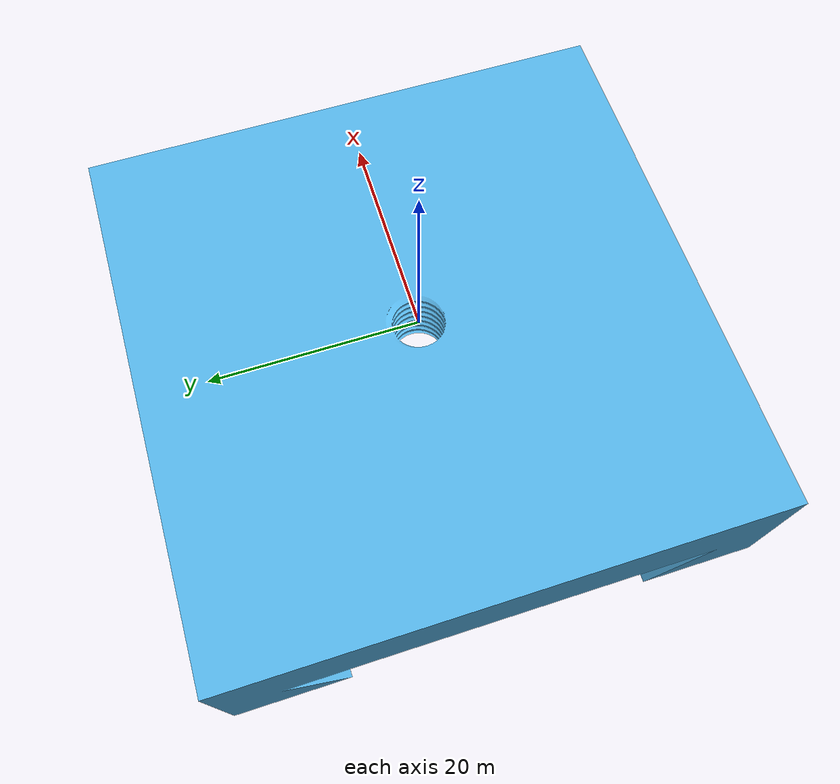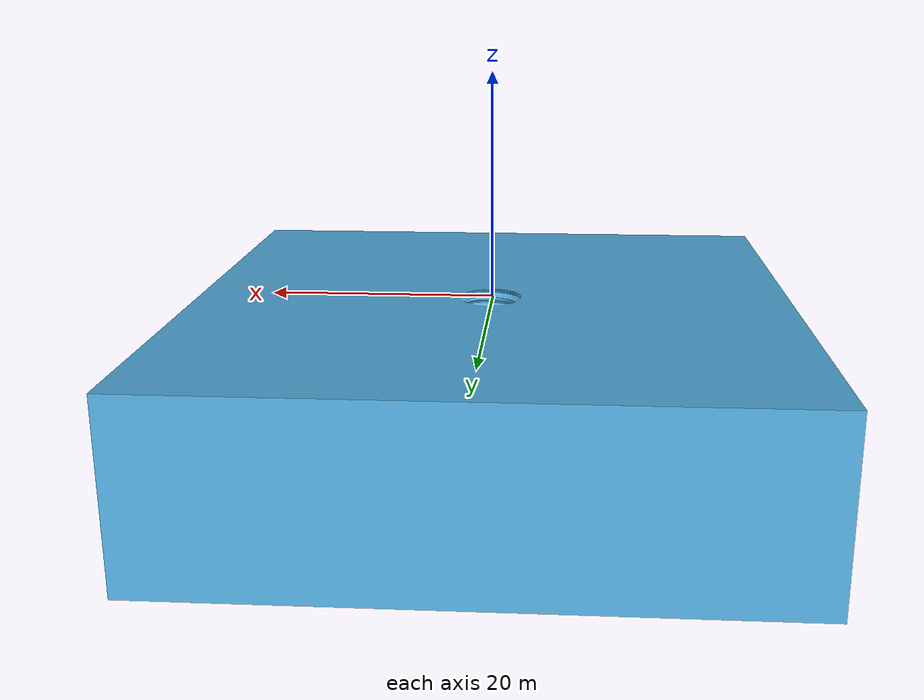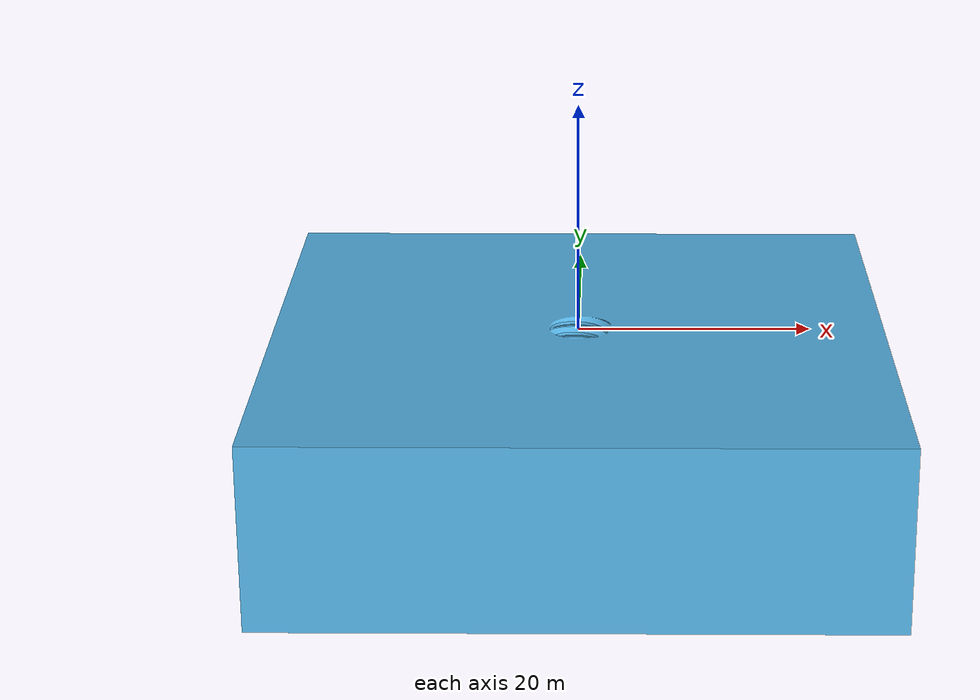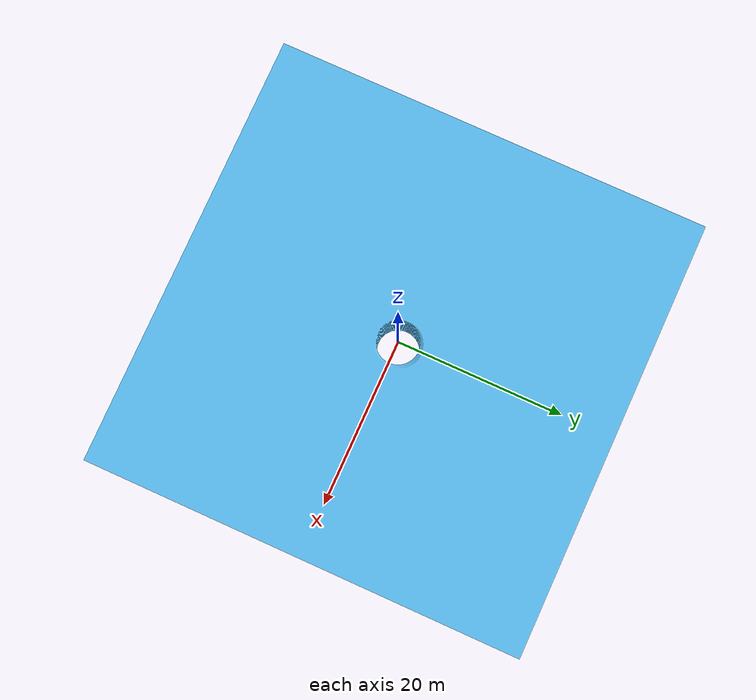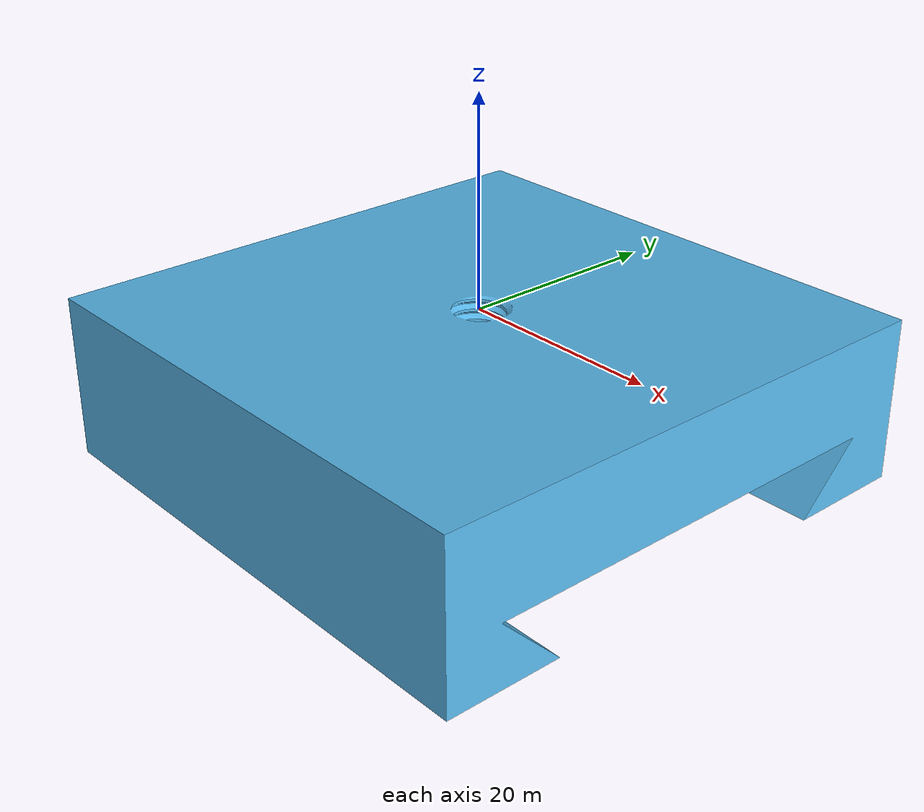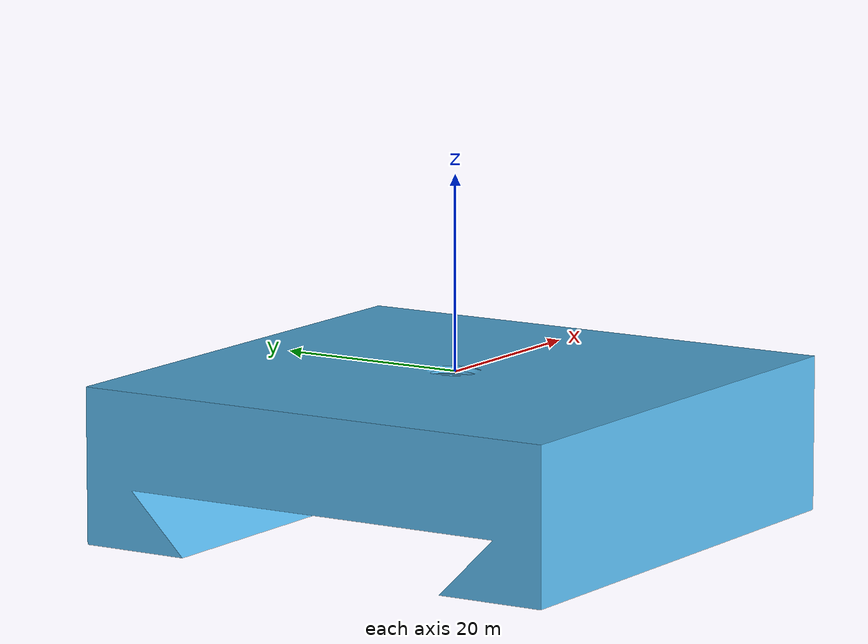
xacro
<?xml version="1.0" ?>
<!-- Only displays the end-effector -->

<robot name="end_effector_screwblock" xmlns:xacro="http://ros.org/wiki/xacro">

  <link name="screwblock_link"/>

	<xacro:property name="prefix" value="screwblock_"/>
	<xacro:property name="parent" value="screwblock_link"/>
	<xacro:property name="scale_factor" value="1.0"/>

	<!-- This joint fixes the claw to an external parent link (could be the world or another robot). -->
	<joint name="${prefix}screwblock_joint" type="fixed">
		<parent link="${parent}"/>
		<child link="${prefix}base_link"/>

		<origin xyz="0 0 0" rpy="0 0 0"/>
	</joint>

	<!-- Define a link for mesh base_link.STL. -->
	<link name="${prefix}base_link">

		<!-- Defines what the link looks like. -->
		<visual>

			<!-- Shape of object. -->
			<geometry>
				<mesh filename="package://end_effector_description/meshes/EndEffectorMountHousing_ScrewBlock-v1.stl" scale= "${scale_factor} ${scale_factor} ${scale_factor}"/>
			</geometry>

			<!-- Origin of the visual element. xyz is in metres. rpy stands for roll pitch yaw in radians. -->
			<origin xyz="0 0 0" rpy="${pi} 0 ${pi}"/>
		</visual>

		<!-- Collision is removed for planning to work -->

		<!--
			Defines the inertial properties of the link.

			If this block is not defined, everything defaults to zero. However, Gazebo will not render the link if inertia values are zero.

			-->
		<inertial>
			<origin xyz="0 0 0" rpy="0 0 0"/>
			<mass value="0.268"/>
			<inertia
				ixx="1.0" ixy="0.0" ixz="0.0"
				iyy="1.0" iyz="0.0"
				izz="1.0"/>
		</inertial>
	</link>

</robot>
